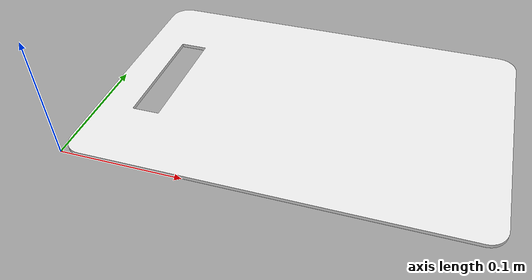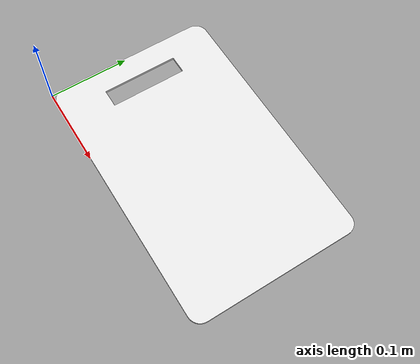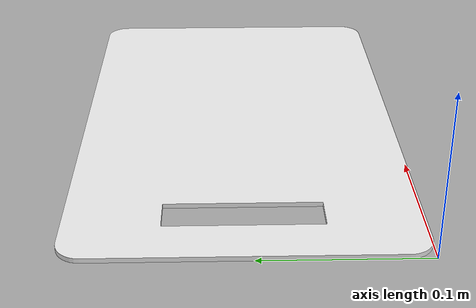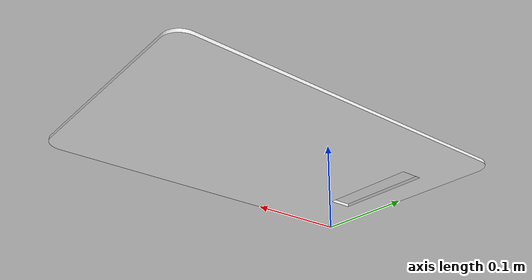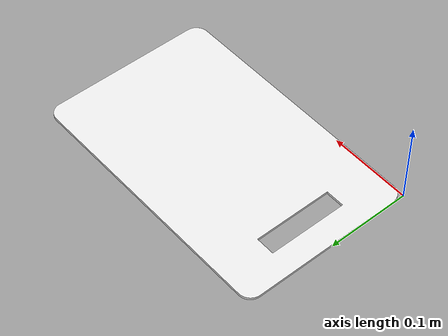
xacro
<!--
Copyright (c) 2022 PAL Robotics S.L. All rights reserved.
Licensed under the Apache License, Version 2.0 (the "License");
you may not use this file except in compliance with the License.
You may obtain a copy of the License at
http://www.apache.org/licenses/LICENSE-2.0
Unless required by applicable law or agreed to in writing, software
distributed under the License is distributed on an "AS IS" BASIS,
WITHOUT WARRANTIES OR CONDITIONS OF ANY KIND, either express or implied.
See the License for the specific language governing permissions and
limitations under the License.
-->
<?xml version="1.0"?>
<robot  xmlns:xacro="http://www.ros.org/wiki/xacro"
        name="chessboard" >
  <!-- Example on how to include the chessboard for eye-hand calibration -->
  <xacro:include filename="$(find pal_gazebo_worlds)/urdf/chessboard/chessboard.urdf.xacro" />
  <xacro:chessboard name="arm_right_chessboard" target_model="talos" target_link="arm_right_7_link" pose="0.15 0.1 -0.22 0.0 0.0 -1.57"/>
</robot>

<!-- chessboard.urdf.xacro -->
<robot xmlns:xacro="http://ros.org/wiki/xacro">

  <xacro:macro name="chessboard" params="name target_model target_link pose">
    <gazebo>
      <plugin name="${name}_plugin}" filename="libgazebo_attachment.so">
          <target_model_name>${target_model}</target_model_name>
          <target_link_name>${target_link}</target_link_name>
          <local_link_name>${name}_link</local_link_name>
          <pose>
            ${pose}
          </pose>
      </plugin>
      <material>White</material>
    </gazebo>
    <link name="${name}_link">
      <inertial>
        <origin xyz="0 0 0" rpy="0 0 0" />
        <mass value="0.01" />
        <inertia ixx="0.1"  ixy="0"  ixz="0" iyy="0.1" iyz="0" izz="0.1" />
      </inertial>
      <visual>
        <origin xyz="0 0 0" rpy="0 0 0" />
        <geometry>
          <mesh filename="package://pal_gazebo_worlds/meshes/chessboard/chessboard.dae"/>
        </geometry>
        <material name="White" />
      </visual>

      <collision>
        <origin xyz="0 0 0" rpy="0 0 0" />
        <geometry>
          <mesh filename="package://pal_gazebo_worlds/meshes/chessboard/chessboard.dae"/>
        </geometry>
        <material name="White" />
      </collision>

    </link>
  </xacro:macro>
</robot>
